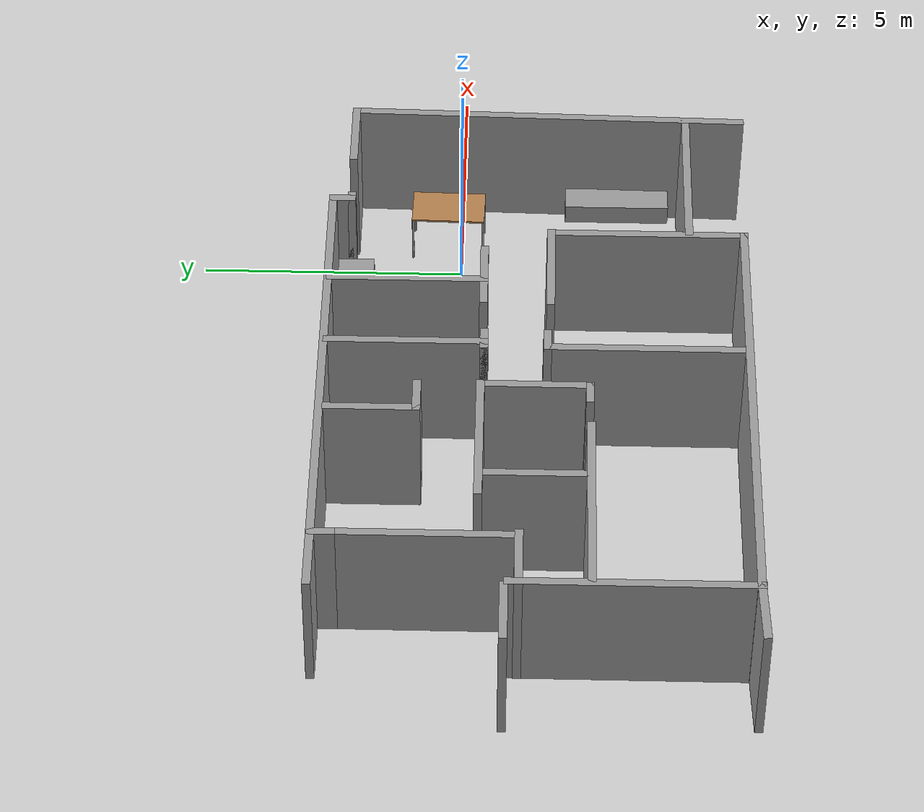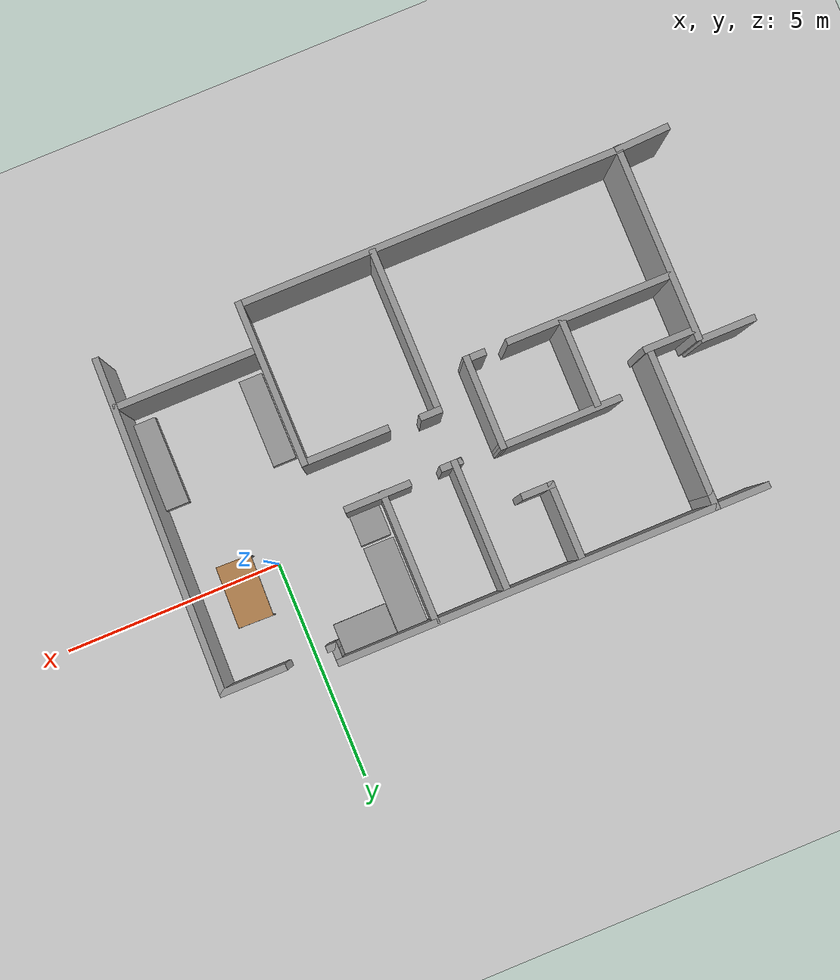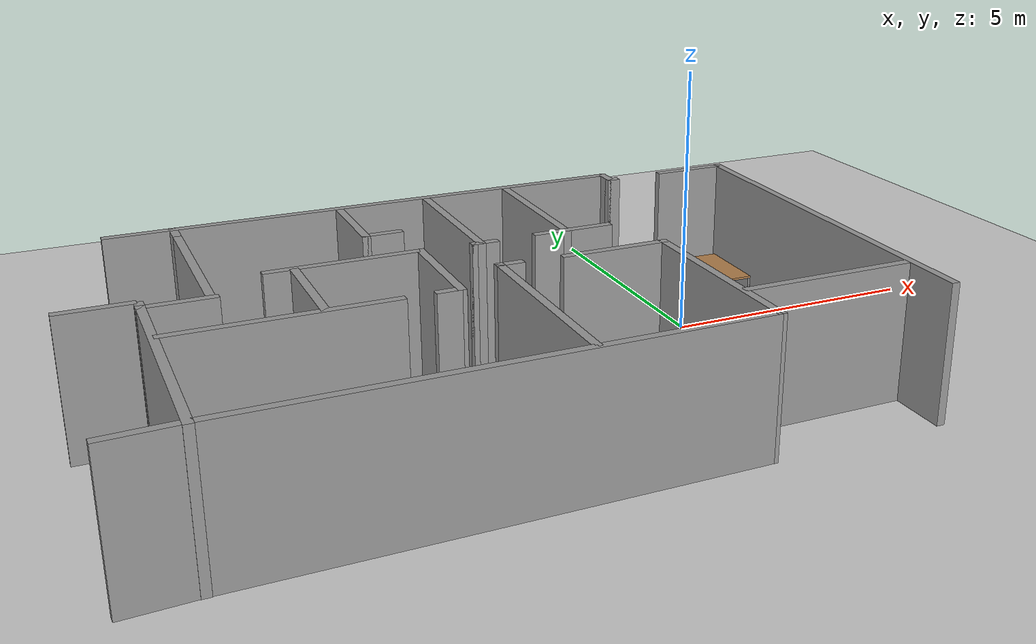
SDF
<sdf version="1.6">
 <world name="default">
  <light name="sun" type="directional">
   <pose>0 0 10 0 -0 0</pose>
   <diffuse>0.8 0.8 0.8 1</diffuse>
   <specular>0.1 0.1 0.1 1</specular>
   <attenuation>
    <range>1000</range>
    <constant>0.9</constant>
    <linear>0.01</linear>
    <quadratic>0.001</quadratic>
   </attenuation>
   <direction>-0.5 0.5 -1</direction>
  </light>
  <model name="ground_plane">
   <static>1</static>
   <link name="link">
    <collision name="collision">
     <geometry><plane><normal>0 0 1</normal><size>100 100</size></plane></geometry>
     <surface><friction><ode><mu>100</mu><mu2>50</mu2></ode></friction></surface>
    </collision>
    <visual name="visual">
     <cast_shadows>0</cast_shadows>
     <geometry><plane><normal>0 0 1</normal><size>100 100</size></plane></geometry>
     <material>
      <script><uri>file://media/materials/scripts/gazebo.material</uri><name>Gazebo/Grey</name></script>
     </material>
    </visual>
   </link>
  </model>
  <gravity>0 0 -9.8</gravity>
  <magnetic_field>6e-06 2.3e-05 -4.2e-05</magnetic_field>
  <atmosphere type="adiabatic"/>
  <physics name="default_physics" default="0" type="ode">
   <max_step_size>0.001</max_step_size>
   <real_time_factor>1</real_time_factor>
   <real_time_update_rate>1000</real_time_update_rate>
  </physics>
  <scene><ambient>0.4 0.4 0.4 1</ambient><background>0.7 0.7 0.7 1</background><shadows>1</shadows></scene>
  <spherical_coordinates>
   <surface_model>EARTH_WGS84</surface_model>
   <latitude_deg>0</latitude_deg>
   <longitude_deg>0</longitude_deg>
   <elevation>0</elevation>
   <heading_deg>0</heading_deg>
  </spherical_coordinates>
  <model name="whiz_ex">
   <pose>-4.64105 -1.45792 0 0 -0 0</pose>
   <link name="Wall_10">
    <collision name="Wall_10_Collision">
     <geometry><box><size>1.25 0.15 2.5</size></box></geometry>
     <pose>0 0 1.25 0 -0 0</pose>
    </collision>
    <visual name="Wall_10_Visual">
     <pose>0 0 1.25 0 -0 0</pose>
     <geometry><box><size>1.25 0.15 2.5</size></box></geometry>
     <material>
      <script><uri>file://media/materials/scripts/gazebo.material</uri><name>Gazebo/Grey</name></script>
      <ambient>1 1 1 1</ambient>
     </material>
    </visual>
    <pose>-6.05295 0.541414 0 0 -0 3.14159</pose>
   </link>
   <link name="Wall_12">
    <collision name="Wall_12_Collision">
     <geometry><box><size>4.4737 0.15 2.5</size></box></geometry>
     <pose>0 0 1.25 0 -0 0</pose>
    </collision>
    <visual name="Wall_12_Visual">
     <pose>0 0 1.25 0 -0 0</pose>
     <geometry><box><size>4.4737 0.15 2.5</size></box></geometry>
     <material>
      <script><uri>file://media/materials/scripts/gazebo.material</uri><name>Gazebo/Grey</name></script>
      <ambient>1 1 1 1</ambient>
     </material>
    </visual>
    <pose>-5.40643 -1.68841 0 0 -0 1.5708</pose>
   </link>
   <link name="Wall_15">
    <collision name="Wall_15_Collision">
     <geometry><box><size>1.25111 0.15 2.5</size></box></geometry>
     <pose>0 0 1.25 0 -0 0</pose>
    </collision>
    <visual name="Wall_15_Visual">
     <pose>0 0 1.25 0 -0 0</pose>
     <geometry><box><size>1.25111 0.15 2.5</size></box></geometry>
     <material>
      <script><uri>file://media/materials/scripts/gazebo.material</uri><name>Gazebo/Grey</name></script>
      <ambient>1 1 1 1</ambient>
     </material>
    </visual>
    <pose>-5.95643 -3.86341 0 0 0 -3.09668</pose>
   </link>
   <link name="Wall_18">
    <collision name="Wall_18_Collision">
     <geometry><box><size>0.5 0.15 2.5</size></box></geometry>
     <pose>0 0 1.25 0 -0 0</pose>
    </collision>
    <visual name="Wall_18_Visual">
     <pose>0 0 1.25 0 -0 0</pose>
     <geometry><box><size>0.5 0.15 2.5</size></box></geometry>
     <material>
      <script><uri>file://media/materials/scripts/gazebo.material</uri><name>Gazebo/Grey</name></script>
      <ambient>1 1 1 1</ambient>
     </material>
    </visual>
    <pose>0.389091 -0.180158 0 0 -0 0</pose>
   </link>
   <link name="Wall_2">
    <collision name="Wall_2_Collision">
     <geometry><box><size>7.5674 0.15 2.5</size></box></geometry>
     <pose>0 0 1.25 0 -0 0</pose>
    </collision>
    <visual name="Wall_2_Visual">
     <pose>0 0 1.25 0 -0 0</pose>
     <geometry><box><size>7.5674 0.15 2.5</size></box></geometry>
     <material>
      <script><uri>file://media/materials/scripts/gazebo.material</uri><name>Gazebo/Grey</name></script>
      <ambient>1 1 1 1</ambient>
     </material>
    </visual>
    <pose>6.52247 -0.153961 0 0 0 -1.59207</pose>
   </link>
   <link name="Wall_20">
    <collision name="Wall_20_Collision">
     <geometry><box><size>3.75 0.15 2.5</size></box></geometry>
     <pose>0 0 1.25 0 -0 0</pose>
    </collision>
    <visual name="Wall_20_Visual">
     <pose>0 0 1.25 0 -0 0</pose>
     <geometry><box><size>3.75 0.15 2.5</size></box></geometry>
     <material>
      <script><uri>file://media/materials/scripts/gazebo.material</uri><name>Gazebo/Grey</name></script>
      <ambient>1 1 1 1</ambient>
     </material>
    </visual>
    <pose>0.214091 -1.98016 0 0 0 -1.5708</pose>
   </link>
   <link name="Wall_22">
    <collision name="Wall_22_Collision">
     <geometry><box><size>2 0.15 2.5</size></box></geometry>
     <pose>0 0 1.25 0 -0 0</pose>
    </collision>
    <visual name="Wall_22_Visual">
     <pose>0 0 1.25 0 -0 0</pose>
     <geometry><box><size>2 0.15 2.5</size></box></geometry>
     <material>
      <script><uri>file://media/materials/scripts/gazebo.material</uri><name>Gazebo/Grey</name></script>
      <ambient>1 1 1 1</ambient>
     </material>
    </visual>
    <pose>2.30947 -0.232759 0 0 -0 0</pose>
   </link>
   <link name="Wall_23">
    <collision name="Wall_23_Collision">
     <geometry><box><size>3.75 0.15 2.5</size></box></geometry>
     <pose>0 0 1.25 0 -0 0</pose>
    </collision>
    <visual name="Wall_23_Visual">
     <pose>0 0 1.25 0 -0 0</pose>
     <geometry><box><size>3.75 0.15 2.5</size></box></geometry>
     <material>
      <script><uri>file://media/materials/scripts/gazebo.material</uri><name>Gazebo/Grey</name></script>
      <ambient>1 1 1 1</ambient>
     </material>
    </visual>
    <pose>3.23447 -2.03276 0 0 0 -1.5708</pose>
   </link>
   <link name="Wall_25">
    <collision name="Wall_25_Collision">
     <geometry><box><size>3.25 0.15 2.5</size></box></geometry>
     <pose>0 0 1.25 0 -0 0</pose>
    </collision>
    <visual name="Wall_25_Visual">
     <pose>0 0 1.25 0 -0 0</pose>
     <geometry><box><size>3.25 0.15 2.5</size></box></geometry>
     <material>
      <script><uri>file://media/materials/scripts/gazebo.material</uri><name>Gazebo/Grey</name></script>
      <ambient>1 1 1 1</ambient>
     </material>
    </visual>
    <pose>4.85442 -2.81022 0 0 -0 0</pose>
   </link>
   <link name="Wall_27">
    <collision name="Wall_27_Collision">
     <geometry><box><size>8.79095 0.15 2.5</size></box></geometry>
     <pose>0 0 1.25 0 -0 0</pose>
    </collision>
    <visual name="Wall_27_Visual">
     <pose>0 0 1.25 0 -0 0</pose>
     <geometry><box><size>8.79095 0.15 2.5</size></box></geometry>
     <material>
      <script><uri>file://media/materials/scripts/gazebo.material</uri><name>Gazebo/Grey</name></script>
      <ambient>1 1 1 1</ambient>
     </material>
    </visual>
    <pose>-1.08598 -3.83573 0 0 -0 0.000687</pose>
   </link>
   <link name="Wall_31">
    <collision name="Wall_31_Collision">
     <geometry><box><size>2.76315 0.15 2.5</size></box></geometry>
     <pose>0 0 1.25 0 -0 0</pose>
    </collision>
    <visual name="Wall_31_Visual">
     <pose>0 0 1.25 0 -0 0</pose>
     <geometry><box><size>2.76315 0.15 2.5</size></box></geometry>
     <material>
      <script><uri>file://media/materials/scripts/gazebo.material</uri><name>Gazebo/Grey</name></script>
      <ambient>1 1 1 1</ambient>
     </material>
    </visual>
    <pose>-2.04362 1.02243 0 0 -0 0</pose>
   </link>
   <link name="Wall_33">
    <collision name="Wall_33_Collision">
     <geometry><box><size>0.5 0.15 2.5</size></box></geometry>
     <pose>0 0 1.25 0 -0 0</pose>
    </collision>
    <visual name="Wall_33_Visual">
     <pose>0 0 1.25 0 -0 0</pose>
     <geometry><box><size>0.5 0.15 2.5</size></box></geometry>
     <material>
      <script><uri>file://media/materials/scripts/gazebo.material</uri><name>Gazebo/Grey</name></script>
      <ambient>1 1 1 1</ambient>
     </material>
    </visual>
    <pose>-0.920191 -0.947573 0 0 -0 3.14159</pose>
   </link>
   <link name="Wall_38">
    <collision name="Wall_38_Collision">
     <geometry><box><size>3.75 0.15 2.5</size></box></geometry>
     <pose>0 0 1.25 0 -0 0</pose>
    </collision>
    <visual name="Wall_38_Visual">
     <pose>0 0 1.25 0 -0 0</pose>
     <geometry><box><size>3.75 0.15 2.5</size></box></geometry>
     <material>
      <script><uri>file://media/materials/scripts/gazebo.material</uri><name>Gazebo/Grey</name></script>
      <ambient>1 1 1 1</ambient>
     </material>
    </visual>
    <pose>-3.52433 -0.96048 0 0 -0 3.14159</pose>
   </link>
   <link name="Wall_4">
    <collision name="Wall_4_Collision">
     <geometry><box><size>1.5 0.15 2.5</size></box></geometry>
     <pose>0 0 1.25 0 -0 0</pose>
    </collision>
    <visual name="Wall_4_Visual">
     <pose>0 0 1.25 0 -0 0</pose>
     <geometry><box><size>1.5 0.15 2.5</size></box></geometry>
     <material>
      <script><uri>file://media/materials/scripts/gazebo.material</uri><name>Gazebo/Grey</name></script>
      <ambient>1 1 1 1</ambient>
     </material>
    </visual>
    <pose>5.92637 3.5539 0 0 -0 3.14159</pose>
   </link>
   <link name="Wall_40">
    <collision name="Wall_40_Collision">
     <geometry><box><size>2 0.15 2.5</size></box></geometry>
     <pose>0 0 1.25 0 -0 0</pose>
    </collision>
    <visual name="Wall_40_Visual">
     <pose>0 0 1.25 0 -0 0</pose>
     <geometry><box><size>2 0.15 2.5</size></box></geometry>
     <material>
      <script><uri>file://media/materials/scripts/gazebo.material</uri><name>Gazebo/Grey</name></script>
      <ambient>1 1 1 1</ambient>
     </material>
    </visual>
    <pose>-2.90026 0.016761 0 0 0 -1.5708</pose>
   </link>
   <link name="Wall_44">
    <collision name="Wall_44_Collision">
     <geometry><box><size>1.25 0.15 2.5</size></box></geometry>
     <pose>0 0 1.25 0 -0 0</pose>
    </collision>
    <visual name="Wall_44_Visual">
     <pose>0 0 1.25 0 -0 0</pose>
     <geometry><box><size>1.25 0.15 2.5</size></box></geometry>
     <material>
      <script><uri>file://media/materials/scripts/gazebo.material</uri><name>Gazebo/Grey</name></script>
      <ambient>1 1 1 1</ambient>
     </material>
    </visual>
    <pose>-4.85954 0.293641 0 0 -0 3.14159</pose>
   </link>
   <link name="Wall_47">
    <collision name="Wall_47_Collision">
     <geometry><box><size>2.12002 0.15 2.5</size></box></geometry>
     <pose>0 0 1.25 0 -0 0</pose>
    </collision>
    <visual name="Wall_47_Visual">
     <pose>0 0 1.25 0 -0 0</pose>
     <geometry><box><size>2.12002 0.15 2.5</size></box></geometry>
     <material>
      <script><uri>file://media/materials/scripts/gazebo.material</uri><name>Gazebo/Grey</name></script>
      <ambient>1 1 1 1</ambient>
     </material>
    </visual>
    <pose>-0.741115 0.037427 0 0 -0 1.56666</pose>
   </link>
   <link name="Wall_49">
    <collision name="Wall_49_Collision">
     <geometry><box><size>1.75 0.15 2.5</size></box></geometry>
     <pose>0 0 1.25 0 -0 0</pose>
    </collision>
    <visual name="Wall_49_Visual">
     <pose>0 0 1.25 0 -0 0</pose>
     <geometry><box><size>1.75 0.15 2.5</size></box></geometry>
     <material>
      <script><uri>file://media/materials/scripts/gazebo.material</uri><name>Gazebo/Grey</name></script>
      <ambient>1 1 1 1</ambient>
     </material>
    </visual>
    <pose>-1.36298 2.95769 0 0 0 -1.5708</pose>
   </link>
   <link name="Wall_50">
    <collision name="Wall_50_Collision">
     <geometry><box><size>0.75 0.15 2.5</size></box></geometry>
     <pose>0 0 1.25 0 -0 0</pose>
    </collision>
    <visual name="Wall_50_Visual">
     <pose>0 0 1.25 0 -0 0</pose>
     <geometry><box><size>0.75 0.15 2.5</size></box></geometry>
     <material>
      <script><uri>file://media/materials/scripts/gazebo.material</uri><name>Gazebo/Grey</name></script>
      <ambient>1 1 1 1</ambient>
     </material>
    </visual>
    <pose>-1.06298 2.15769 0 0 -0 0</pose>
   </link>
   <link name="Wall_52">
    <collision name="Wall_52_Collision">
     <geometry><box><size>3 0.15 2.5</size></box></geometry>
     <pose>0 0 1.25 0 -0 0</pose>
    </collision>
    <visual name="Wall_52_Visual">
     <pose>0 0 1.25 0 -0 0</pose>
     <geometry><box><size>3 0.15 2.5</size></box></geometry>
     <material>
      <script><uri>file://media/materials/scripts/gazebo.material</uri><name>Gazebo/Grey</name></script>
      <ambient>1 1 1 1</ambient>
     </material>
    </visual>
    <pose>0.325194 2.40113 0 0 0 -1.5708</pose>
   </link>
   <link name="Wall_53">
    <collision name="Wall_53_Collision">
     <geometry><box><size>0.25 0.15 2.5</size></box></geometry>
     <pose>0 0 1.25 0 -0 0</pose>
    </collision>
    <visual name="Wall_53_Visual">
     <pose>0 0 1.25 0 -0 0</pose>
     <geometry><box><size>0.25 0.15 2.5</size></box></geometry>
     <material>
      <script><uri>file://media/materials/scripts/gazebo.material</uri><name>Gazebo/Grey</name></script>
      <ambient>1 1 1 1</ambient>
     </material>
    </visual>
    <pose>0.275194 0.976133 0 0 -0 3.14159</pose>
   </link>
   <link name="Wall_54">
    <collision name="Wall_54_Collision">
     <geometry><box><size>0.5 0.15 2.5</size></box></geometry>
     <pose>0 0 1.25 0 -0 0</pose>
    </collision>
    <visual name="Wall_54_Visual">
     <pose>0 0 1.25 0 -0 0</pose>
     <geometry><box><size>0.5 0.15 2.5</size></box></geometry>
     <material>
      <script><uri>file://media/materials/scripts/gazebo.material</uri><name>Gazebo/Grey</name></script>
      <ambient>1 1 1 1</ambient>
     </material>
    </visual>
    <pose>0.400194 0.976133 0 0 -0 0</pose>
   </link>
   <link name="Wall_56">
    <collision name="Wall_56_Collision">
     <geometry><box><size>1.5 0.15 2.5</size></box></geometry>
     <pose>0 0 1.25 0 -0 0</pose>
    </collision>
    <visual name="Wall_56_Visual">
     <pose>0 0 1.25 0 -0 0</pose>
     <geometry><box><size>1.5 0.15 2.5</size></box></geometry>
     <material>
      <script><uri>file://media/materials/scripts/gazebo.material</uri><name>Gazebo/Grey</name></script>
      <ambient>1 1 1 1</ambient>
     </material>
    </visual>
    <pose>2.08001 1.00491 0 0 -0 0</pose>
   </link>
   <link name="Wall_58">
    <collision name="Wall_58_Collision">
     <geometry><box><size>3 0.15 2.5</size></box></geometry>
     <pose>0 0 1.25 0 -0 0</pose>
    </collision>
    <visual name="Wall_58_Visual">
     <pose>0 0 1.25 0 -0 0</pose>
     <geometry><box><size>3 0.15 2.5</size></box></geometry>
     <material>
      <script><uri>file://media/materials/scripts/gazebo.material</uri><name>Gazebo/Grey</name></script>
      <ambient>1 1 1 1</ambient>
     </material>
    </visual>
    <pose>1.95253 2.42395 0 0 0 -1.5708</pose>
   </link>
   <link name="Wall_6">
    <collision name="Wall_6_Collision">
     <geometry><box><size>0.25 0.15 2.5</size></box></geometry>
     <pose>0 0 1.25 0 -0 0</pose>
    </collision>
    <visual name="Wall_6_Visual">
     <pose>0 0 1.25 0 -0 0</pose>
     <geometry><box><size>0.25 0.15 2.5</size></box></geometry>
     <material>
      <script><uri>file://media/materials/scripts/gazebo.material</uri><name>Gazebo/Grey</name></script>
      <ambient>1 1 1 1</ambient>
     </material>
    </visual>
    <pose>4.14705 3.54141 0 0 -0 3.14159</pose>
   </link>
   <link name="Wall_60">
    <collision name="Wall_60_Collision">
     <geometry><box><size>0.5 0.15 2.5</size></box></geometry>
     <pose>0 0 1.25 0 -0 0</pose>
    </collision>
    <visual name="Wall_60_Visual">
     <pose>0 0 1.25 0 -0 0</pose>
     <geometry><box><size>0.5 0.15 2.5</size></box></geometry>
     <material>
      <script><uri>file://media/materials/scripts/gazebo.material</uri><name>Gazebo/Grey</name></script>
      <ambient>1 1 1 1</ambient>
     </material>
    </visual>
    <pose>-4.35804 3.71031 0 0 0 -1.5708</pose>
   </link>
   <link name="Wall_64">
    <collision name="Wall_64_Collision">
     <geometry><box><size>3.25 0.15 2.5</size></box></geometry>
     <pose>0 0 1.25 0 -0 0</pose>
    </collision>
    <visual name="Wall_64_Visual">
     <pose>0 0 1.25 0 -0 0</pose>
     <geometry><box><size>3.25 0.15 2.5</size></box></geometry>
     <material>
      <script><uri>file://media/materials/scripts/gazebo.material</uri><name>Gazebo/Grey</name></script>
      <ambient>1 1 1 1</ambient>
     </material>
    </visual>
    <pose>-4.35804 1.98531 0 0 0 -1.5708</pose>
   </link>
   <link name="Wall_7">
    <collision name="Wall_7_Collision">
     <geometry><box><size>0.5 0.15 2.5</size></box></geometry>
     <pose>0 0 1.25 0 -0 0</pose>
    </collision>
    <visual name="Wall_7_Visual">
     <pose>0 0 1.25 0 -0 0</pose>
     <geometry><box><size>0.5 0.15 2.5</size></box></geometry>
     <material>
      <script><uri>file://media/materials/scripts/gazebo.material</uri><name>Gazebo/Grey</name></script>
      <ambient>1 1 1 1</ambient>
     </material>
    </visual>
    <pose>4.09705 3.71641 0 0 -0 1.5708</pose>
   </link>
   <link name="Wall_8">
    <collision name="Wall_8_Collision">
     <geometry><box><size>9.75 0.15 2.5</size></box></geometry>
     <pose>0 0 1.25 0 -0 0</pose>
    </collision>
    <visual name="Wall_8_Visual">
     <pose>0 0 1.25 0 -0 0</pose>
     <geometry><box><size>9.75 0.15 2.5</size></box></geometry>
     <material>
      <script><uri>file://media/materials/scripts/gazebo.material</uri><name>Gazebo/Grey</name></script>
      <ambient>1 1 1 1</ambient>
     </material>
    </visual>
    <pose>-0.702951 3.89141 0 0 -0 3.14159</pose>
   </link>
   <static>1</static>
  </model>
  <model name="table">
   <static>0</static>
   <link name="link">
    <collision name="surface">
     <pose>0 0 1 0 -0 0</pose>
     <geometry><box><size>1.5 0.8 0.03</size></box></geometry>
     <surface><friction><ode><mu>0.6</mu><mu2>0.6</mu2></ode></friction></surface>
    </collision>
    <visual name="visual1">
     <pose>0 0 1 0 -0 0</pose>
     <geometry><box><size>1.4 0.8 0.04</size></box></geometry>
     <material>
      <script><uri>file://media/materials/scripts/gazebo.material</uri><name>Gazebo/Wood</name></script>
     </material>
    </visual>
    <collision name="front_left_leg">
     <pose>0.68 0.38 0.5 0 -0 0</pose>
     <geometry><cylinder><radius>0.02</radius><length>1</length></cylinder></geometry>
    </collision>
    <visual name="front_left_leg">
     <pose>0.68 0.38 0.5 0 -0 0</pose>
     <geometry><cylinder><radius>0.02</radius><length>1</length></cylinder></geometry>
     <material>
      <script><uri>file://media/materials/scripts/gazebo.material</uri><name>Gazebo/Grey</name></script>
     </material>
    </visual>
    <collision name="front_right_leg">
     <pose>0.68 -0.38 0.5 0 -0 0</pose>
     <geometry><cylinder><radius>0.02</radius><length>1</length></cylinder></geometry>
    </collision>
    <visual name="front_right_leg">
     <pose>0.68 -0.38 0.5 0 -0 0</pose>
     <geometry><cylinder><radius>0.02</radius><length>1</length></cylinder></geometry>
     <material>
      <script><uri>file://media/materials/scripts/gazebo.material</uri><name>Gazebo/Grey</name></script>
     </material>
    </visual>
    <collision name="back_right_leg">
     <pose>-0.68 -0.38 0.5 0 -0 0</pose>
     <geometry><cylinder><radius>0.02</radius><length>1</length></cylinder></geometry>
    </collision>
    <visual name="back_right_leg">
     <pose>-0.68 -0.38 0.5 0 -0 0</pose>
     <geometry><cylinder><radius>0.02</radius><length>1</length></cylinder></geometry>
     <material>
      <script><uri>file://media/materials/scripts/gazebo.material</uri><name>Gazebo/Grey</name></script>
     </material>
    </visual>
    <collision name="back_left_leg">
     <pose>-0.68 0.38 0.5 0 -0 0</pose>
     <geometry><cylinder><radius>0.02</radius><length>1</length></cylinder></geometry>
    </collision>
    <visual name="back_left_leg">
     <pose>-0.68 0.38 0.5 0 -0 0</pose>
     <geometry><cylinder><radius>0.02</radius><length>1</length></cylinder></geometry>
     <material>
      <script><uri>file://media/materials/scripts/gazebo.material</uri><name>Gazebo/Grey</name></script>
     </material>
    </visual>
    <inertial>
     <inertia><ixx>1</ixx><ixy>0</ixy><ixz>0</ixz><iyy>1</iyy><iyz>0</iyz><izz>1</izz></inertia>
     <mass>1</mass>
    </inertial>
   </link>
   <pose>0.849805 0.280665 -8e-06 1e-06 -0 1.54594</pose>
  </model>
  <model name="whiz_ex_decor">
   <link name="link_1">
    <pose>-1.16692 0.520073 0 0 -0 0</pose>
    <inertial>
     <mass>0.472639</mass>
     <inertia>
      <ixx>0.0575927</ixx>
      <ixy>0</ixy>
      <ixz>0</ixz>
      <iyy>0.0584211</iyy>
      <iyz>0</iyz>
      <izz>0.0372405</izz>
     </inertia>
    </inertial>
    <visual name="visual">
     <geometry><box><size>0.695177 0.679886 1</size></box></geometry>
     <material>
      <lighting>1</lighting>
      <script><uri>file://media/materials/scripts/gazebo.material</uri><name>Gazebo/Grey</name></script>
      <ambient>0.3 0.3 0.3 1</ambient>
      <diffuse>0.7 0.7 0.7 1</diffuse>
      <specular>0.01 0.01 0.01 1</specular>
      <emissive>0 0 0 1</emissive>
     </material>
    </visual>
    <collision name="collision">
     <geometry><box><size>0.695177 0.679886 1</size></box></geometry>
     <surface>
      <friction>
       <ode><mu>1</mu><mu2>1</mu2><fdir1>0 0 0</fdir1><slip1>0</slip1><slip2>0</slip2></ode>
       <torsional>
        <coefficient>1</coefficient>
        <patch_radius>0</patch_radius>
        <surface_radius>0</surface_radius>
        <use_patch_radius>1</use_patch_radius>
        <ode><slip>0</slip></ode>
       </torsional>
      </friction>
      <bounce><restitution_coefficient>0</restitution_coefficient><threshold>1e+06</threshold></bounce>
      <contact>
       <collide_without_contact>0</collide_without_contact>
       <collide_without_contact_bitmask>1</collide_without_contact_bitmask>
       <collide_bitmask>1</collide_bitmask>
       <ode>
        <soft_cfm>0</soft_cfm>
        <soft_erp>0.2</soft_erp>
        <kp>1e+13</kp>
        <kd>1</kd>
        <max_vel>0.01</max_vel>
        <min_depth>0</min_depth>
       </ode>
       <bullet>
        <split_impulse>1</split_impulse>
        <split_impulse_penetration_threshold>-0.01</split_impulse_penetration_threshold>
        <soft_cfm>0</soft_cfm>
        <soft_erp>0.2</soft_erp>
        <kp>1e+13</kp>
        <kd>1</kd>
       </bullet>
      </contact>
     </surface>
    </collision>
   </link>
   <link name="link_1_clone">
    <pose>-1.18525 1.90209 0 0 -0 0</pose>
    <inertial>
     <mass>1.35203</mass>
     <inertia>
      <ixx>0.538842</ixx>
      <ixy>0</ixy>
      <ixz>0</ixz>
      <iyy>0.167119</iyy>
      <iyz>0</iyz>
      <izz>0.480623</izz>
     </inertia>
    </inertial>
    <visual name="visual">
     <geometry><box><size>0.695177 1.94488 1</size></box></geometry>
     <material>
      <lighting>1</lighting>
      <script><uri>file://media/materials/scripts/gazebo.material</uri><name>Gazebo/Grey</name></script>
      <ambient>0.3 0.3 0.3 1</ambient>
      <diffuse>0.7 0.7 0.7 1</diffuse>
      <specular>0.01 0.01 0.01 1</specular>
      <emissive>0 0 0 1</emissive>
      <shader type="pixel"/>
     </material>
    </visual>
    <collision name="collision">
     <geometry><box><size>0.695177 1.94488 1</size></box></geometry>
     <surface>
      <friction>
       <ode><mu>1</mu><mu2>1</mu2><fdir1>0 0 0</fdir1><slip1>0</slip1><slip2>0</slip2></ode>
       <torsional>
        <coefficient>1</coefficient>
        <patch_radius>0</patch_radius>
        <surface_radius>0</surface_radius>
        <use_patch_radius>1</use_patch_radius>
        <ode><slip>0</slip></ode>
       </torsional>
      </friction>
      <bounce><restitution_coefficient>0</restitution_coefficient><threshold>1e+06</threshold></bounce>
      <contact>
       <collide_without_contact>0</collide_without_contact>
       <collide_without_contact_bitmask>1</collide_without_contact_bitmask>
       <collide_bitmask>1</collide_bitmask>
       <ode>
        <soft_cfm>0</soft_cfm>
        <soft_erp>0.2</soft_erp>
        <kp>1e+13</kp>
        <kd>1</kd>
        <max_vel>0.01</max_vel>
        <min_depth>0</min_depth>
       </ode>
       <bullet>
        <split_impulse>1</split_impulse>
        <split_impulse_penetration_threshold>-0.01</split_impulse_penetration_threshold>
        <soft_cfm>0</soft_cfm>
        <soft_erp>0.2</soft_erp>
        <kp>1e+13</kp>
        <kd>1</kd>
       </bullet>
      </contact>
     </surface>
    </collision>
   </link>
   <link name="link_1_clone_0">
    <pose>-0.221468 2.53799 0 0 -0 0</pose>
    <inertial>
     <mass>0.824592</mass>
     <inertia>
      <ixx>0.100479</ixx>
      <ixy>0</ixy>
      <ixz>0</ixz>
      <iyy>0.169797</iyy>
      <iyz>0</iyz>
      <izz>0.132844</izz>
     </inertia>
    </inertial>
    <visual name="visual">
     <geometry><box><size>1.21285 0.679886 1</size></box></geometry>
     <material>
      <lighting>1</lighting>
      <script><uri>file://media/materials/scripts/gazebo.material</uri><name>Gazebo/Grey</name></script>
      <ambient>0.3 0.3 0.3 1</ambient>
      <diffuse>0.7 0.7 0.7 1</diffuse>
      <specular>0.01 0.01 0.01 1</specular>
      <emissive>0 0 0 1</emissive>
      <shader type="pixel"/>
     </material>
    </visual>
    <collision name="collision">
     <geometry><box><size>1.21285 0.679886 1</size></box></geometry>
     <surface>
      <friction>
       <ode><mu>1</mu><mu2>1</mu2><fdir1>0 0 0</fdir1><slip1>0</slip1><slip2>0</slip2></ode>
       <torsional>
        <coefficient>1</coefficient>
        <patch_radius>0</patch_radius>
        <surface_radius>0</surface_radius>
        <use_patch_radius>1</use_patch_radius>
        <ode><slip>0</slip></ode>
       </torsional>
      </friction>
      <bounce><restitution_coefficient>0</restitution_coefficient><threshold>1e+06</threshold></bounce>
      <contact>
       <collide_without_contact>0</collide_without_contact>
       <collide_without_contact_bitmask>1</collide_without_contact_bitmask>
       <collide_bitmask>1</collide_bitmask>
       <ode>
        <soft_cfm>0</soft_cfm>
        <soft_erp>0.2</soft_erp>
        <kp>1e+13</kp>
        <kd>1</kd>
        <max_vel>0.01</max_vel>
        <min_depth>0</min_depth>
       </ode>
       <bullet>
        <split_impulse>1</split_impulse>
        <split_impulse_penetration_threshold>-0.01</split_impulse_penetration_threshold>
        <soft_cfm>0</soft_cfm>
        <soft_erp>0.2</soft_erp>
        <kp>1e+13</kp>
        <kd>1</kd>
       </bullet>
      </contact>
     </surface>
    </collision>
   </link>
   <link name="link_3">
    <pose>0.026896 -2.48365 0 0 -0 0</pose>
    <inertial>
     <mass>0.426901</mass>
     <inertia>
      <ixx>0.148598</ixx>
      <ixy>0</ixy>
      <ixz>0</ixz>
      <iyy>0.0157966</iyy>
      <iyz>0</iyz>
      <izz>0.15306</izz>
     </inertia>
    </inertial>
    <visual name="visual">
     <geometry><box><size>0.53359 2.00442 0.399135</size></box></geometry>
     <material>
      <lighting>1</lighting>
      <script><uri>file://media/materials/scripts/gazebo.material</uri><name>Gazebo/Grey</name></script>
      <ambient>0.3 0.3 0.3 1</ambient>
      <diffuse>0.7 0.7 0.7 1</diffuse>
      <specular>0.01 0.01 0.01 1</specular>
      <emissive>0 0 0 1</emissive>
     </material>
    </visual>
    <collision name="collision">
     <geometry><box><size>0.53359 2.00442 0.399135</size></box></geometry>
     <surface>
      <friction>
       <ode><mu>1</mu><mu2>1</mu2><fdir1>0 0 0</fdir1><slip1>0</slip1><slip2>0</slip2></ode>
       <torsional>
        <coefficient>1</coefficient>
        <patch_radius>0</patch_radius>
        <surface_radius>0</surface_radius>
        <use_patch_radius>1</use_patch_radius>
        <ode><slip>0</slip></ode>
       </torsional>
      </friction>
      <bounce><restitution_coefficient>0</restitution_coefficient><threshold>1e+06</threshold></bounce>
      <contact>
       <collide_without_contact>0</collide_without_contact>
       <collide_without_contact_bitmask>1</collide_without_contact_bitmask>
       <collide_bitmask>1</collide_bitmask>
       <ode>
        <soft_cfm>0</soft_cfm>
        <soft_erp>0.2</soft_erp>
        <kp>1e+13</kp>
        <kd>1</kd>
        <max_vel>0.01</max_vel>
        <min_depth>0</min_depth>
       </ode>
       <bullet>
        <split_impulse>1</split_impulse>
        <split_impulse_penetration_threshold>-0.01</split_impulse_penetration_threshold>
        <soft_cfm>0</soft_cfm>
        <soft_erp>0.2</soft_erp>
        <kp>1e+13</kp>
        <kd>1</kd>
       </bullet>
      </contact>
     </surface>
    </collision>
   </link>
   <link name="link_3_clone">
    <pose>2.54673 -2.47651 0 0 -0 0</pose>
    <inertial>
     <mass>0.426901</mass>
     <inertia>
      <ixx>0.148598</ixx>
      <ixy>0</ixy>
      <ixz>0</ixz>
      <iyy>0.0157966</iyy>
      <iyz>0</iyz>
      <izz>0.15306</izz>
     </inertia>
    </inertial>
    <visual name="visual">
     <geometry><box><size>0.53359 2.00442 0.399135</size></box></geometry>
     <material>
      <lighting>1</lighting>
      <script><uri>file://media/materials/scripts/gazebo.material</uri><name>Gazebo/Grey</name></script>
      <ambient>0.3 0.3 0.3 1</ambient>
      <diffuse>0.7 0.7 0.7 1</diffuse>
      <specular>0.01 0.01 0.01 1</specular>
      <emissive>0 0 0 1</emissive>
      <shader type="pixel"/>
     </material>
    </visual>
    <collision name="collision">
     <geometry><box><size>0.53359 2.00442 0.399135</size></box></geometry>
     <surface>
      <friction>
       <ode><mu>1</mu><mu2>1</mu2><fdir1>0 0 0</fdir1><slip1>0</slip1><slip2>0</slip2></ode>
       <torsional>
        <coefficient>1</coefficient>
        <patch_radius>0</patch_radius>
        <surface_radius>0</surface_radius>
        <use_patch_radius>1</use_patch_radius>
        <ode><slip>0</slip></ode>
       </torsional>
      </friction>
      <bounce><restitution_coefficient>0</restitution_coefficient><threshold>1e+06</threshold></bounce>
      <contact>
       <collide_without_contact>0</collide_without_contact>
       <collide_without_contact_bitmask>1</collide_without_contact_bitmask>
       <collide_bitmask>1</collide_bitmask>
       <ode>
        <soft_cfm>0</soft_cfm>
        <soft_erp>0.2</soft_erp>
        <kp>1e+13</kp>
        <kd>1</kd>
        <max_vel>0.01</max_vel>
        <min_depth>0</min_depth>
       </ode>
       <bullet>
        <split_impulse>1</split_impulse>
        <split_impulse_penetration_threshold>-0.01</split_impulse_penetration_threshold>
        <soft_cfm>0</soft_cfm>
        <soft_erp>0.2</soft_erp>
        <kp>1e+13</kp>
        <kd>1</kd>
       </bullet>
      </contact>
     </surface>
    </collision>
   </link>
   <static>0</static>
   <pose>-1.02688 -0.523447 0.500001 0 -0 3.8e-05</pose>
  </model>
  <light name="user_spot_light_0" type="spot">
   <pose>-1.61217 1.27697 1 0 -0 0</pose>
   <diffuse>0.5 0.5 0.5 1</diffuse>
   <specular>0.1 0.1 0.1 1</specular>
   <direction>0 0 -1</direction>
   <attenuation>
    <range>20</range>
    <constant>0.5</constant>
    <linear>0.01</linear>
    <quadratic>0.001</quadratic>
   </attenuation>
   <cast_shadows>0</cast_shadows>
   <spot><inner_angle>0.6</inner_angle><outer_angle>1</outer_angle><falloff>1</falloff></spot>
  </light>
 </world>
</sdf>
